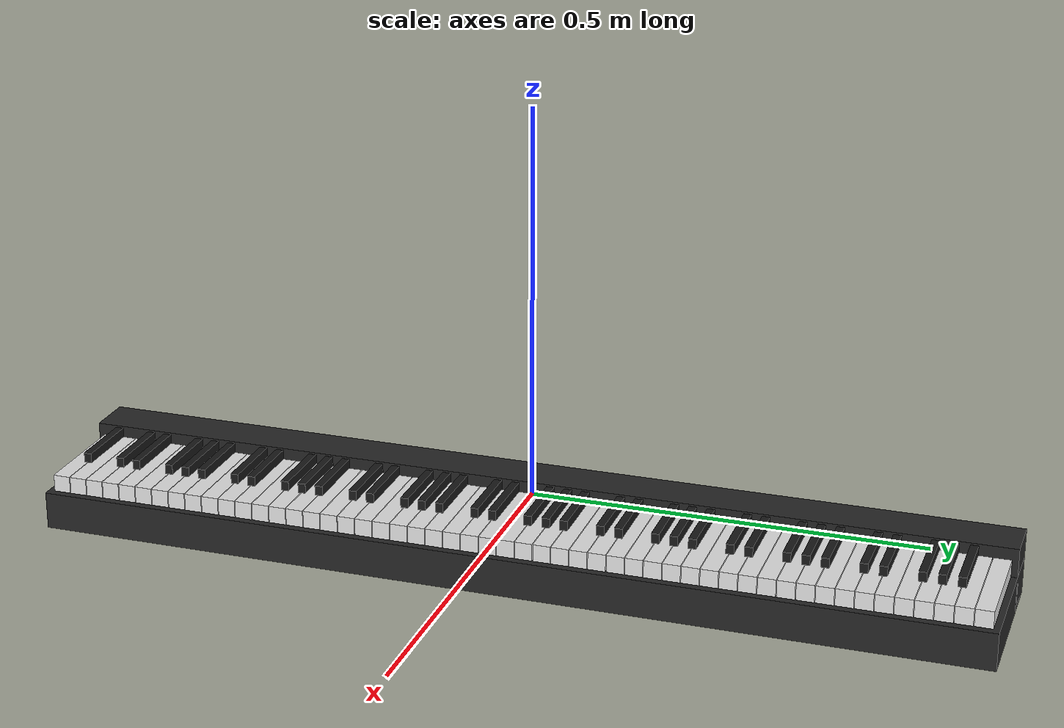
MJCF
<mujoco model="piano_nikomaku">
  <compiler autolimits="true" angle="radian"/>
  <default>
    <default class="/">
      <joint type="hinge" axis="0 1 0"/>
      <geom type="box" contype="0" conaffinity="1"/>
      <site type="box" group="4" rgba="1 0 0 1"/>
      <default class="white_key">
        <joint pos="-0.10000000000000001 0 0" stiffness="4" range="0 0.070471344578795628" springref="-0.01" armature="0.001" damping="0.050000000000000003"/>
        <geom size="0.070000000000000007 0.010990384615384615 0.010990384615384615" material="white" mass="0.040000000000000001"/>
        <site size="0.070000000000000007 0.010990384615384615 0.010990384615384615"/>
      </default>
      <default class="black_key">
        <joint pos="-0.065000000000000002 0 0" stiffness="4" range="0 0.072599453730494617" springref="-0.01" armature="0.001" damping="0.050000000000000003"/>
        <geom size="0.044999999999999998 0.0050000000000000001 0.0089999999999999993" material="black" mass="0.02"/>
        <site size="0.044999999999999998 0.0050000000000000001 0.0089999999999999993"/>
      </default>
    </default>
  </default>
  <asset>
    <material name="white" class="/" rgba="0.90000000000000002 0.90000000000000002 0.90000000000000002 1"/>
    <material name="black" class="/" rgba="0.10000000000000001 0.10000000000000001 0.10000000000000001 1"/>
  </asset>
  <worldbody>
    <body name="piano">
      <body name="base">
        <inertial pos="-0.029999999999999999 0 -0.027500000000000004" mass="10" diaginertia="0.10000000000000001 0.10000000000000001 0.10000000000000001"/>
        <geom name="base_1" class="/" type="box" size="0.029999999999999999 0.60499999999999998 0.042500000000000003" rgba="0.14999999999999999 0.14999999999999999 0.14999999999999999 1" pos="-0.029999999999999999 0 -0.027500000000000004"/>
        <geom name="base_2" class="/" type="box" size="0.105 0.60499999999999998 0.024009615384615386" rgba="0.14999999999999999 0.14999999999999999 0.14999999999999999 1" pos="0.044999999999999998 0 -0.04599038461538462"/>
      </body>
      <body name="white_key_0" pos="0.070000000000000007 -0.58600961538461538 -0.010990384615384615">
        <geom name="white_key_geom_0" class="white_key"/>
        <joint name="white_joint_0" class="white_key"/>
        <site name="white_key_site_0" class="white_key"/>
      </body>
      <body name="black_key_1" pos="0.044999999999999998 -0.57451923076923084 0.0035000000000000014">
        <geom name="black_key_geom_1" class="black_key"/>
        <joint name="black_joint_1" class="black_key"/>
        <site name="black_key_site_1" class="black_key"/>
      </body>
      <body name="white_key_2" pos="0.070000000000000007 -0.56302884615384619 -0.010990384615384615">
        <geom name="white_key_geom_2" class="white_key"/>
        <joint name="white_joint_2" class="white_key"/>
        <site name="white_key_site_2" class="white_key"/>
      </body>
      <body name="white_key_3" pos="0.070000000000000007 -0.54004807692307688 -0.010990384615384615">
        <geom name="white_key_geom_3" class="white_key"/>
        <joint name="white_joint_3" class="white_key"/>
        <site name="white_key_site_3" class="white_key"/>
      </body>
      <body name="black_key_4" pos="0.044999999999999998 -0.52805769230769228 0.0035000000000000014">
        <geom name="black_key_geom_4" class="black_key"/>
        <joint name="black_joint_4" class="black_key"/>
        <site name="black_key_site_4" class="black_key"/>
      </body>
      <body name="white_key_5" pos="0.070000000000000007 -0.51706730769230769 -0.010990384615384615">
        <geom name="white_key_geom_5" class="white_key"/>
        <joint name="white_joint_5" class="white_key"/>
        <site name="white_key_site_5" class="white_key"/>
      </body>
      <body name="black_key_6" pos="0.044999999999999998 -0.50507692307692298 0.0035000000000000014">
        <geom name="black_key_geom_6" class="black_key"/>
        <joint name="black_joint_6" class="black_key"/>
        <site name="black_key_site_6" class="black_key"/>
      </body>
      <body name="white_key_7" pos="0.070000000000000007 -0.49408653846153844 -0.010990384615384615">
        <geom name="white_key_geom_7" class="white_key"/>
        <joint name="white_joint_7" class="white_key"/>
        <site name="white_key_site_7" class="white_key"/>
      </body>
      <body name="white_key_8" pos="0.070000000000000007 -0.47110576923076919 -0.010990384615384615">
        <geom name="white_key_geom_8" class="white_key"/>
        <joint name="white_joint_8" class="white_key"/>
        <site name="white_key_site_8" class="white_key"/>
      </body>
      <body name="black_key_9" pos="0.044999999999999998 -0.45911538461538459 0.0035000000000000014">
        <geom name="black_key_geom_9" class="black_key"/>
        <joint name="black_joint_9" class="black_key"/>
        <site name="black_key_site_9" class="black_key"/>
      </body>
      <body name="white_key_10" pos="0.070000000000000007 -0.448125 -0.010990384615384615">
        <geom name="white_key_geom_10" class="white_key"/>
        <joint name="white_joint_10" class="white_key"/>
        <site name="white_key_site_10" class="white_key"/>
      </body>
      <body name="black_key_11" pos="0.044999999999999998 -0.43613461538461529 0.0035000000000000014">
        <geom name="black_key_geom_11" class="black_key"/>
        <joint name="black_joint_11" class="black_key"/>
        <site name="black_key_site_11" class="black_key"/>
      </body>
      <body name="white_key_12" pos="0.070000000000000007 -0.42514423076923075 -0.010990384615384615">
        <geom name="white_key_geom_12" class="white_key"/>
        <joint name="white_joint_12" class="white_key"/>
        <site name="white_key_site_12" class="white_key"/>
      </body>
      <body name="black_key_13" pos="0.044999999999999998 -0.41315384615384609 0.0035000000000000014">
        <geom name="black_key_geom_13" class="black_key"/>
        <joint name="black_joint_13" class="black_key"/>
        <site name="black_key_site_13" class="black_key"/>
      </body>
      <body name="white_key_14" pos="0.070000000000000007 -0.4021634615384615 -0.010990384615384615">
        <geom name="white_key_geom_14" class="white_key"/>
        <joint name="white_joint_14" class="white_key"/>
        <site name="white_key_site_14" class="white_key"/>
      </body>
      <body name="white_key_15" pos="0.070000000000000007 -0.3791826923076923 -0.010990384615384615">
        <geom name="white_key_geom_15" class="white_key"/>
        <joint name="white_joint_15" class="white_key"/>
        <site name="white_key_site_15" class="white_key"/>
      </body>
      <body name="black_key_16" pos="0.044999999999999998 -0.36719230769230771 0.0035000000000000014">
        <geom name="black_key_geom_16" class="black_key"/>
        <joint name="black_joint_16" class="black_key"/>
        <site name="black_key_site_16" class="black_key"/>
      </body>
      <body name="white_key_17" pos="0.070000000000000007 -0.35620192307692305 -0.010990384615384615">
        <geom name="white_key_geom_17" class="white_key"/>
        <joint name="white_joint_17" class="white_key"/>
        <site name="white_key_site_17" class="white_key"/>
      </body>
      <body name="black_key_18" pos="0.044999999999999998 -0.3442115384615384 0.0035000000000000014">
        <geom name="black_key_geom_18" class="black_key"/>
        <joint name="black_joint_18" class="black_key"/>
        <site name="black_key_site_18" class="black_key"/>
      </body>
      <body name="white_key_19" pos="0.070000000000000007 -0.33322115384615381 -0.010990384615384615">
        <geom name="white_key_geom_19" class="white_key"/>
        <joint name="white_joint_19" class="white_key"/>
        <site name="white_key_site_19" class="white_key"/>
      </body>
      <body name="white_key_20" pos="0.070000000000000007 -0.31024038461538461 -0.010990384615384615">
        <geom name="white_key_geom_20" class="white_key"/>
        <joint name="white_joint_20" class="white_key"/>
        <site name="white_key_site_20" class="white_key"/>
      </body>
      <body name="black_key_21" pos="0.044999999999999998 -0.29825000000000002 0.0035000000000000014">
        <geom name="black_key_geom_21" class="black_key"/>
        <joint name="black_joint_21" class="black_key"/>
        <site name="black_key_site_21" class="black_key"/>
      </body>
      <body name="white_key_22" pos="0.070000000000000007 -0.28725961538461536 -0.010990384615384615">
        <geom name="white_key_geom_22" class="white_key"/>
        <joint name="white_joint_22" class="white_key"/>
        <site name="white_key_site_22" class="white_key"/>
      </body>
      <body name="black_key_23" pos="0.044999999999999998 -0.27526923076923071 0.0035000000000000014">
        <geom name="black_key_geom_23" class="black_key"/>
        <joint name="black_joint_23" class="black_key"/>
        <site name="black_key_site_23" class="black_key"/>
      </body>
      <body name="white_key_24" pos="0.070000000000000007 -0.26427884615384611 -0.010990384615384615">
        <geom name="white_key_geom_24" class="white_key"/>
        <joint name="white_joint_24" class="white_key"/>
        <site name="white_key_site_24" class="white_key"/>
      </body>
      <body name="black_key_25" pos="0.044999999999999998 -0.25228846153846152 0.0035000000000000014">
        <geom name="black_key_geom_25" class="black_key"/>
        <joint name="black_joint_25" class="black_key"/>
        <site name="black_key_site_25" class="black_key"/>
      </body>
      <body name="white_key_26" pos="0.070000000000000007 -0.24129807692307692 -0.010990384615384615">
        <geom name="white_key_geom_26" class="white_key"/>
        <joint name="white_joint_26" class="white_key"/>
        <site name="white_key_site_26" class="white_key"/>
      </body>
      <body name="white_key_27" pos="0.070000000000000007 -0.21831730769230767 -0.010990384615384615">
        <geom name="white_key_geom_27" class="white_key"/>
        <joint name="white_joint_27" class="white_key"/>
        <site name="white_key_site_27" class="white_key"/>
      </body>
      <body name="black_key_28" pos="0.044999999999999998 -0.20632692307692307 0.0035000000000000014">
        <geom name="black_key_geom_28" class="black_key"/>
        <joint name="black_joint_28" class="black_key"/>
        <site name="black_key_site_28" class="black_key"/>
      </body>
      <body name="white_key_29" pos="0.070000000000000007 -0.19533653846153842 -0.010990384615384615">
        <geom name="white_key_geom_29" class="white_key"/>
        <joint name="white_joint_29" class="white_key"/>
        <site name="white_key_site_29" class="white_key"/>
      </body>
      <body name="black_key_30" pos="0.044999999999999998 -0.18334615384615377 0.0035000000000000014">
        <geom name="black_key_geom_30" class="black_key"/>
        <joint name="black_joint_30" class="black_key"/>
        <site name="black_key_site_30" class="black_key"/>
      </body>
      <body name="white_key_31" pos="0.070000000000000007 -0.17235576923076923 -0.010990384615384615">
        <geom name="white_key_geom_31" class="white_key"/>
        <joint name="white_joint_31" class="white_key"/>
        <site name="white_key_site_31" class="white_key"/>
      </body>
      <body name="white_key_32" pos="0.070000000000000007 -0.14937499999999998 -0.010990384615384615">
        <geom name="white_key_geom_32" class="white_key"/>
        <joint name="white_joint_32" class="white_key"/>
        <site name="white_key_site_32" class="white_key"/>
      </body>
      <body name="black_key_33" pos="0.044999999999999998 -0.13738461538461538 0.0035000000000000014">
        <geom name="black_key_geom_33" class="black_key"/>
        <joint name="black_joint_33" class="black_key"/>
        <site name="black_key_site_33" class="black_key"/>
      </body>
      <body name="white_key_34" pos="0.070000000000000007 -0.12639423076923073 -0.010990384615384615">
        <geom name="white_key_geom_34" class="white_key"/>
        <joint name="white_joint_34" class="white_key"/>
        <site name="white_key_site_34" class="white_key"/>
      </body>
      <body name="black_key_35" pos="0.044999999999999998 -0.11440384615384608 0.0035000000000000014">
        <geom name="black_key_geom_35" class="black_key"/>
        <joint name="black_joint_35" class="black_key"/>
        <site name="black_key_site_35" class="black_key"/>
      </body>
      <body name="white_key_36" pos="0.070000000000000007 -0.10341346153846154 -0.010990384615384615">
        <geom name="white_key_geom_36" class="white_key"/>
        <joint name="white_joint_36" class="white_key"/>
        <site name="white_key_site_36" class="white_key"/>
      </body>
      <body name="black_key_37" pos="0.044999999999999998 -0.091423076923076885 0.0035000000000000014">
        <geom name="black_key_geom_37" class="black_key"/>
        <joint name="black_joint_37" class="black_key"/>
        <site name="black_key_site_37" class="black_key"/>
      </body>
      <body name="white_key_38" pos="0.070000000000000007 -0.080432692307692233 -0.010990384615384615">
        <geom name="white_key_geom_38" class="white_key"/>
        <joint name="white_joint_38" class="white_key"/>
        <site name="white_key_site_38" class="white_key"/>
      </body>
      <body name="white_key_39" pos="0.070000000000000007 -0.057451923076923039 -0.010990384615384615">
        <geom name="white_key_geom_39" class="white_key"/>
        <joint name="white_joint_39" class="white_key"/>
        <site name="white_key_site_39" class="white_key"/>
      </body>
      <body name="black_key_40" pos="0.044999999999999998 -0.045461538461538442 0.0035000000000000014">
        <geom name="black_key_geom_40" class="black_key"/>
        <joint name="black_joint_40" class="black_key"/>
        <site name="black_key_site_40" class="black_key"/>
      </body>
      <body name="white_key_41" pos="0.070000000000000007 -0.034471153846153846 -0.010990384615384615">
        <geom name="white_key_geom_41" class="white_key"/>
        <joint name="white_joint_41" class="white_key"/>
        <site name="white_key_site_41" class="white_key"/>
      </body>
      <body name="black_key_42" pos="0.044999999999999998 -0.022480769230769138 0.0035000000000000014">
        <geom name="black_key_geom_42" class="black_key"/>
        <joint name="black_joint_42" class="black_key"/>
        <site name="black_key_site_42" class="black_key"/>
      </body>
      <body name="white_key_43" pos="0.070000000000000007 -0.011490384615384541 -0.010990384615384615">
        <geom name="white_key_geom_43" class="white_key"/>
        <joint name="white_joint_43" class="white_key"/>
        <site name="white_key_site_43" class="white_key"/>
      </body>
      <body name="white_key_44" pos="0.070000000000000007 0.011490384615384652 -0.010990384615384615">
        <geom name="white_key_geom_44" class="white_key"/>
        <joint name="white_joint_44" class="white_key"/>
        <site name="white_key_site_44" class="white_key"/>
      </body>
      <body name="black_key_45" pos="0.044999999999999998 0.023480769230769249 0.0035000000000000014">
        <geom name="black_key_geom_45" class="black_key"/>
        <joint name="black_joint_45" class="black_key"/>
        <site name="black_key_site_45" class="black_key"/>
      </body>
      <body name="white_key_46" pos="0.070000000000000007 0.034471153846153846 -0.010990384615384615">
        <geom name="white_key_geom_46" class="white_key"/>
        <joint name="white_joint_46" class="white_key"/>
        <site name="white_key_site_46" class="white_key"/>
      </body>
      <body name="black_key_47" pos="0.044999999999999998 0.046461538461538554 0.0035000000000000014">
        <geom name="black_key_geom_47" class="black_key"/>
        <joint name="black_joint_47" class="black_key"/>
        <site name="black_key_site_47" class="black_key"/>
      </body>
      <body name="white_key_48" pos="0.070000000000000007 0.05745192307692315 -0.010990384615384615">
        <geom name="white_key_geom_48" class="white_key"/>
        <joint name="white_joint_48" class="white_key"/>
        <site name="white_key_site_48" class="white_key"/>
      </body>
      <body name="black_key_49" pos="0.044999999999999998 0.069442307692307748 0.0035000000000000014">
        <geom name="black_key_geom_49" class="black_key"/>
        <joint name="black_joint_49" class="black_key"/>
        <site name="black_key_site_49" class="black_key"/>
      </body>
      <body name="white_key_50" pos="0.070000000000000007 0.080432692307692344 -0.010990384615384615">
        <geom name="white_key_geom_50" class="white_key"/>
        <joint name="white_joint_50" class="white_key"/>
        <site name="white_key_site_50" class="white_key"/>
      </body>
      <body name="white_key_51" pos="0.070000000000000007 0.10341346153846154 -0.010990384615384615">
        <geom name="white_key_geom_51" class="white_key"/>
        <joint name="white_joint_51" class="white_key"/>
        <site name="white_key_site_51" class="white_key"/>
      </body>
      <body name="black_key_52" pos="0.044999999999999998 0.11540384615384613 0.0035000000000000014">
        <geom name="black_key_geom_52" class="black_key"/>
        <joint name="black_joint_52" class="black_key"/>
        <site name="black_key_site_52" class="black_key"/>
      </body>
      <body name="white_key_53" pos="0.070000000000000007 0.12639423076923084 -0.010990384615384615">
        <geom name="white_key_geom_53" class="white_key"/>
        <joint name="white_joint_53" class="white_key"/>
        <site name="white_key_site_53" class="white_key"/>
      </body>
      <body name="black_key_54" pos="0.044999999999999998 0.13838461538461544 0.0035000000000000014">
        <geom name="black_key_geom_54" class="black_key"/>
        <joint name="black_joint_54" class="black_key"/>
        <site name="black_key_site_54" class="black_key"/>
      </body>
      <body name="white_key_55" pos="0.070000000000000007 0.14937500000000004 -0.010990384615384615">
        <geom name="white_key_geom_55" class="white_key"/>
        <joint name="white_joint_55" class="white_key"/>
        <site name="white_key_site_55" class="white_key"/>
      </body>
      <body name="white_key_56" pos="0.070000000000000007 0.17235576923076923 -0.010990384615384615">
        <geom name="white_key_geom_56" class="white_key"/>
        <joint name="white_joint_56" class="white_key"/>
        <site name="white_key_site_56" class="white_key"/>
      </body>
      <body name="black_key_57" pos="0.044999999999999998 0.18434615384615383 0.0035000000000000014">
        <geom name="black_key_geom_57" class="black_key"/>
        <joint name="black_joint_57" class="black_key"/>
        <site name="black_key_site_57" class="black_key"/>
      </body>
      <body name="white_key_58" pos="0.070000000000000007 0.19533653846153853 -0.010990384615384615">
        <geom name="white_key_geom_58" class="white_key"/>
        <joint name="white_joint_58" class="white_key"/>
        <site name="white_key_site_58" class="white_key"/>
      </body>
      <body name="black_key_59" pos="0.044999999999999998 0.20732692307692313 0.0035000000000000014">
        <geom name="black_key_geom_59" class="black_key"/>
        <joint name="black_joint_59" class="black_key"/>
        <site name="black_key_site_59" class="black_key"/>
      </body>
      <body name="white_key_60" pos="0.070000000000000007 0.21831730769230773 -0.010990384615384615">
        <geom name="white_key_geom_60" class="white_key"/>
        <joint name="white_joint_60" class="white_key"/>
        <site name="white_key_site_60" class="white_key"/>
      </body>
      <body name="black_key_61" pos="0.044999999999999998 0.23030769230769232 0.0035000000000000014">
        <geom name="black_key_geom_61" class="black_key"/>
        <joint name="black_joint_61" class="black_key"/>
        <site name="black_key_site_61" class="black_key"/>
      </body>
      <body name="white_key_62" pos="0.070000000000000007 0.24129807692307692 -0.010990384615384615">
        <geom name="white_key_geom_62" class="white_key"/>
        <joint name="white_joint_62" class="white_key"/>
        <site name="white_key_site_62" class="white_key"/>
      </body>
      <body name="white_key_63" pos="0.070000000000000007 0.26427884615384623 -0.010990384615384615">
        <geom name="white_key_geom_63" class="white_key"/>
        <joint name="white_joint_63" class="white_key"/>
        <site name="white_key_site_63" class="white_key"/>
      </body>
      <body name="black_key_64" pos="0.044999999999999998 0.27626923076923082 0.0035000000000000014">
        <geom name="black_key_geom_64" class="black_key"/>
        <joint name="black_joint_64" class="black_key"/>
        <site name="black_key_site_64" class="black_key"/>
      </body>
      <body name="white_key_65" pos="0.070000000000000007 0.28725961538461542 -0.010990384615384615">
        <geom name="white_key_geom_65" class="white_key"/>
        <joint name="white_joint_65" class="white_key"/>
        <site name="white_key_site_65" class="white_key"/>
      </body>
      <body name="black_key_66" pos="0.044999999999999998 0.29925000000000013 0.0035000000000000014">
        <geom name="black_key_geom_66" class="black_key"/>
        <joint name="black_joint_66" class="black_key"/>
        <site name="black_key_site_66" class="black_key"/>
      </body>
      <body name="white_key_67" pos="0.070000000000000007 0.31024038461538461 -0.010990384615384615">
        <geom name="white_key_geom_67" class="white_key"/>
        <joint name="white_joint_67" class="white_key"/>
        <site name="white_key_site_67" class="white_key"/>
      </body>
      <body name="white_key_68" pos="0.070000000000000007 0.33322115384615392 -0.010990384615384615">
        <geom name="white_key_geom_68" class="white_key"/>
        <joint name="white_joint_68" class="white_key"/>
        <site name="white_key_site_68" class="white_key"/>
      </body>
      <body name="black_key_69" pos="0.044999999999999998 0.34521153846153851 0.0035000000000000014">
        <geom name="black_key_geom_69" class="black_key"/>
        <joint name="black_joint_69" class="black_key"/>
        <site name="black_key_site_69" class="black_key"/>
      </body>
      <body name="white_key_70" pos="0.070000000000000007 0.35620192307692311 -0.010990384615384615">
        <geom name="white_key_geom_70" class="white_key"/>
        <joint name="white_joint_70" class="white_key"/>
        <site name="white_key_site_70" class="white_key"/>
      </body>
      <body name="black_key_71" pos="0.044999999999999998 0.36819230769230782 0.0035000000000000014">
        <geom name="black_key_geom_71" class="black_key"/>
        <joint name="black_joint_71" class="black_key"/>
        <site name="black_key_site_71" class="black_key"/>
      </body>
      <body name="white_key_72" pos="0.070000000000000007 0.3791826923076923 -0.010990384615384615">
        <geom name="white_key_geom_72" class="white_key"/>
        <joint name="white_joint_72" class="white_key"/>
        <site name="white_key_site_72" class="white_key"/>
      </body>
      <body name="black_key_73" pos="0.044999999999999998 0.39117307692307701 0.0035000000000000014">
        <geom name="black_key_geom_73" class="black_key"/>
        <joint name="black_joint_73" class="black_key"/>
        <site name="black_key_site_73" class="black_key"/>
      </body>
      <body name="white_key_74" pos="0.070000000000000007 0.40216346153846161 -0.010990384615384615">
        <geom name="white_key_geom_74" class="white_key"/>
        <joint name="white_joint_74" class="white_key"/>
        <site name="white_key_site_74" class="white_key"/>
      </body>
      <body name="white_key_75" pos="0.070000000000000007 0.42514423076923091 -0.010990384615384615">
        <geom name="white_key_geom_75" class="white_key"/>
        <joint name="white_joint_75" class="white_key"/>
        <site name="white_key_site_75" class="white_key"/>
      </body>
      <body name="black_key_76" pos="0.044999999999999998 0.43713461538461551 0.0035000000000000014">
        <geom name="black_key_geom_76" class="black_key"/>
        <joint name="black_joint_76" class="black_key"/>
        <site name="black_key_site_76" class="black_key"/>
      </body>
      <body name="white_key_77" pos="0.070000000000000007 0.448125 -0.010990384615384615">
        <geom name="white_key_geom_77" class="white_key"/>
        <joint name="white_joint_77" class="white_key"/>
        <site name="white_key_site_77" class="white_key"/>
      </body>
      <body name="black_key_78" pos="0.044999999999999998 0.46011538461538481 0.0035000000000000014">
        <geom name="black_key_geom_78" class="black_key"/>
        <joint name="black_joint_78" class="black_key"/>
        <site name="black_key_site_78" class="black_key"/>
      </body>
      <body name="white_key_79" pos="0.070000000000000007 0.4711057692307693 -0.010990384615384615">
        <geom name="white_key_geom_79" class="white_key"/>
        <joint name="white_joint_79" class="white_key"/>
        <site name="white_key_site_79" class="white_key"/>
      </body>
      <body name="white_key_80" pos="0.070000000000000007 0.4940865384615386 -0.010990384615384615">
        <geom name="white_key_geom_80" class="white_key"/>
        <joint name="white_joint_80" class="white_key"/>
        <site name="white_key_site_80" class="white_key"/>
      </body>
      <body name="black_key_81" pos="0.044999999999999998 0.5060769230769232 0.0035000000000000014">
        <geom name="black_key_geom_81" class="black_key"/>
        <joint name="black_joint_81" class="black_key"/>
        <site name="black_key_site_81" class="black_key"/>
      </body>
      <body name="white_key_82" pos="0.070000000000000007 0.51706730769230769 -0.010990384615384615">
        <geom name="white_key_geom_82" class="white_key"/>
        <joint name="white_joint_82" class="white_key"/>
        <site name="white_key_site_82" class="white_key"/>
      </body>
      <body name="black_key_83" pos="0.044999999999999998 0.52905769230769251 0.0035000000000000014">
        <geom name="black_key_geom_83" class="black_key"/>
        <joint name="black_joint_83" class="black_key"/>
        <site name="black_key_site_83" class="black_key"/>
      </body>
      <body name="white_key_84" pos="0.070000000000000007 0.54004807692307699 -0.010990384615384615">
        <geom name="white_key_geom_84" class="white_key"/>
        <joint name="white_joint_84" class="white_key"/>
        <site name="white_key_site_84" class="white_key"/>
      </body>
      <body name="black_key_85" pos="0.044999999999999998 0.5520384615384617 0.0035000000000000014">
        <geom name="black_key_geom_85" class="black_key"/>
        <joint name="black_joint_85" class="black_key"/>
        <site name="black_key_site_85" class="black_key"/>
      </body>
      <body name="white_key_86" pos="0.070000000000000007 0.5630288461538463 -0.010990384615384615">
        <geom name="white_key_geom_86" class="white_key"/>
        <joint name="white_joint_86" class="white_key"/>
        <site name="white_key_site_86" class="white_key"/>
      </body>
      <body name="white_key_87" pos="0.070000000000000007 0.58600961538461538 -0.010990384615384615">
        <geom name="white_key_geom_87" class="white_key"/>
        <joint name="white_joint_87" class="white_key"/>
        <site name="white_key_site_87" class="white_key"/>
      </body>
    </body>
  </worldbody>
</mujoco>
